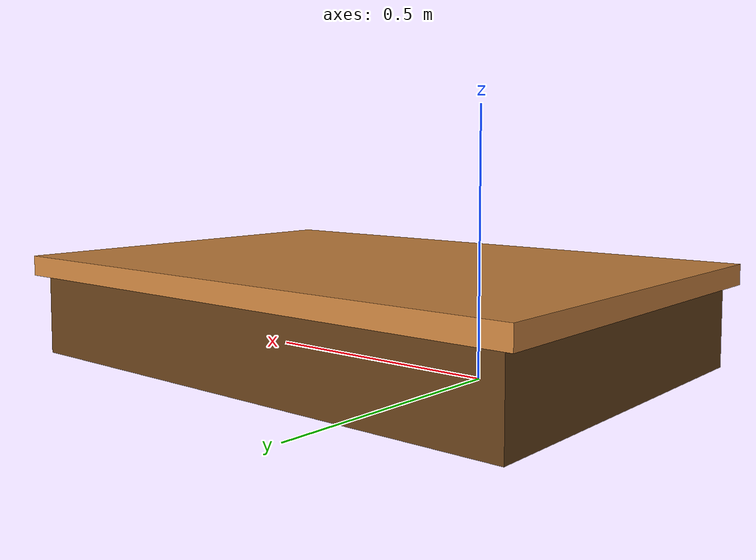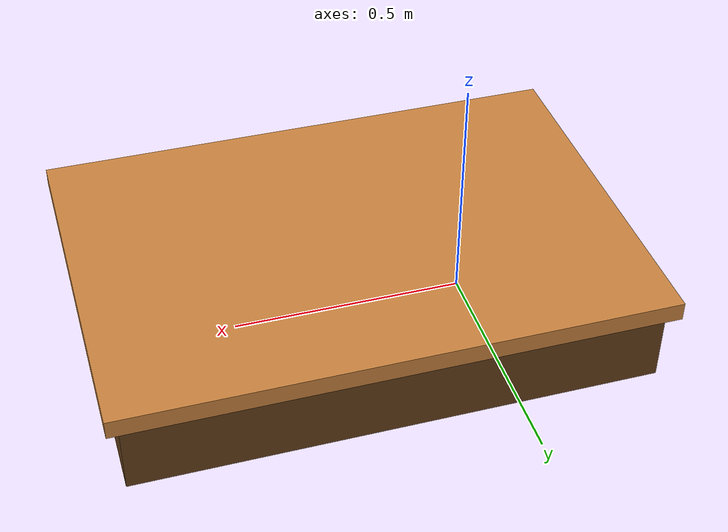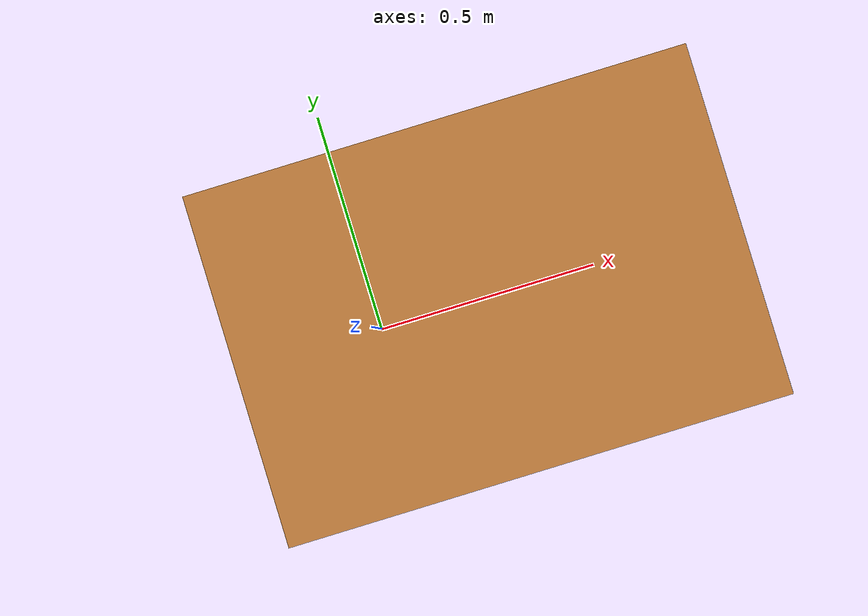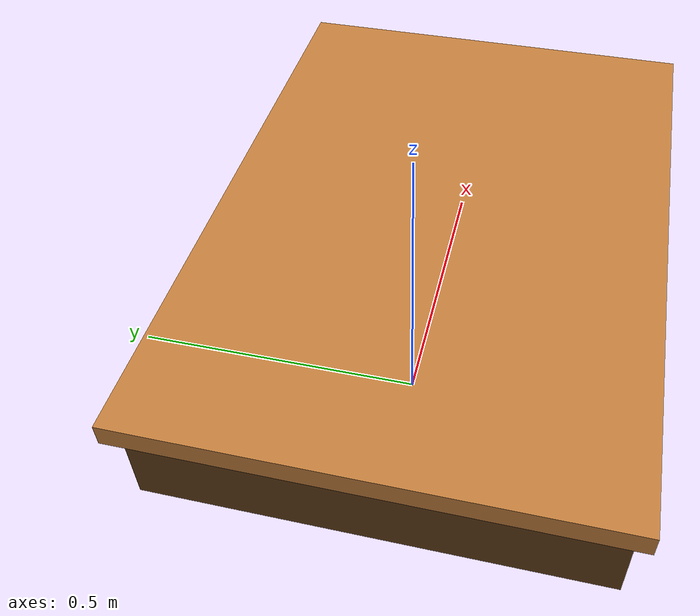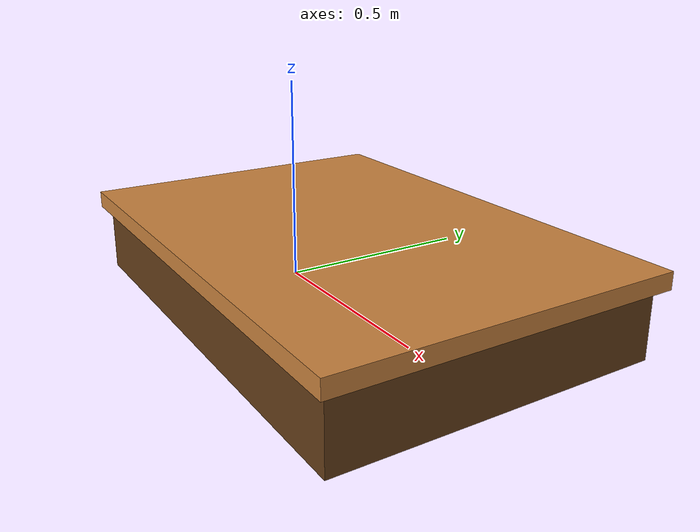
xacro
<?xml version="1.0" ?>
<robot name="table_platform" xmlns:xacro="http://www.ros.org/wiki/xacro">

    <material name="wood_material">
        <color rgba="0.8 0.52 0.25 1.0"/>
    </material>
    <material name="table_leg_material">
        <color rgba="0.4 0.25 0.1 1.0"/>
    </material>

    <link name="table_link">
        <!-- Wooden Table Top Board -->
        <visual>
            <origin xyz="0.25 0 0.18" rpy="0 0 0"/>
            <geometry>
                <box size="1.15 0.80 0.04"/>
            </geometry>
            <material name="wood_material"/>
        </visual>
        <collision>
            <origin xyz="0.25 0 0.18" rpy="0 0 0"/>
            <geometry>
                <box size="1.15 0.80 0.04"/>
            </geometry>
        </collision>

        <!-- Wooden Base Support Block -->
        <visual>
            <origin xyz="0.25 0 0.08" rpy="0 0 0"/>
            <geometry>
                <box size="1.10 0.76 0.16"/>
            </geometry>
            <material name="table_leg_material"/>
        </visual>
        <collision>
            <origin xyz="0.25 0 0.08" rpy="0 0 0"/>
            <geometry>
                <box size="1.10 0.76 0.16"/>
            </geometry>
        </collision>

        <inertial>
            <origin xyz="0.25 0 0.10" rpy="0 0 0"/>
            <mass value="50.0"/>
            <inertia ixx="1.0" ixy="0.0" ixz="0.0" iyy="1.0" iyz="0.0" izz="1.0"/>
        </inertial>
    </link>

    <gazebo reference="table_link">
        <material>Gazebo/Wood</material>
    </gazebo>

</robot>
